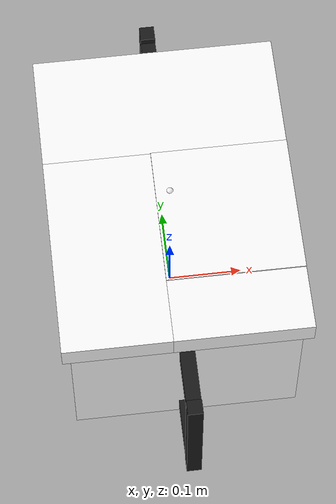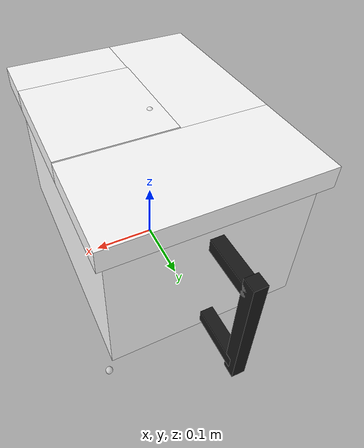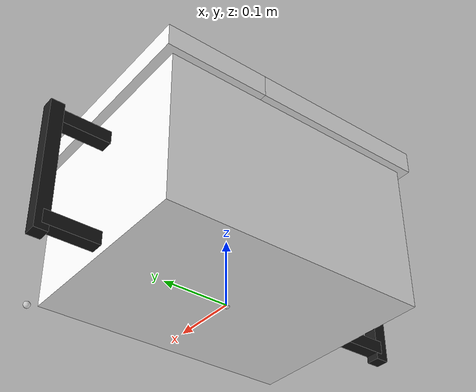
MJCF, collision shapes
<mujoco model="tote_f01">
  <default>
    <default class="visual">
      <geom group="1" type="mesh" contype="0" conaffinity="0" density="100"/>
    </default>
    <default class="collision">
      <geom group="0" type="mesh" density="100" solimp="0.95 0.98 0.001" solref="0.004 1" rgba="1 1 1 0.25"/>
    </default>
  </default>
  <asset>
    <material name="opaque__plastic__gray.001" specular="0.5" shininess="0.36" rgba="0.050389 0.050389 0.050389 1.000000"/>
    <material name="opaque__plastic__white.001" specular="0.5" shininess="0.25" rgba="0.800000 0.800000 0.800000 1.000000"/>
    <mesh file="meshes/tote_f01_0.obj" name="tote_f01_0"/>
    <mesh file="meshes/tote_f01_1.obj" name="tote_f01_1"/>
  </asset>
  <worldbody>
    <body>
      <body name="object">
        <geom mesh="tote_f01_0" material="opaque__plastic__gray.001" class="visual"/>
        <geom mesh="tote_f01_1" material="opaque__plastic__white.001" class="visual"/>
        <geom name="collider_box_cb92007b" type="box" pos="0.070889545 -0.03478815 0.24138967500000003" size="0.017964765000000008 0.08994487500000001 0.09283863" quat="0.5000000000000001 -0.5000000000000001 0.5000000000000001 0.5000000000000001" class="collision"/>
        <geom name="collider_box_d69e040c" type="box" pos="7.4400000000140285e-06 0.13538329999999998 0.240409235" size="0.016987835000000007 0.07733282 0.16083340000000002" quat="0.7071067811865476 0.0 0.7071067811865472 -4.3297802811774695e-17" class="collision"/>
        <geom name="collider_box_a47505b5" type="box" pos="-0.08994709000000001 -0.077390755 0.24041107499999997" size="0.016986354999999995 0.07089175 0.135441235" quat="0.5000000000000001 0.5000000000000001 0.5000000000000001 -0.5000000000000001" class="collision"/>
        <geom name="collider_box_85e0036b" type="box" pos="-7.285614012862304e-06 5.577544530395313e-05 0.11056478500286834" size="0.11286876933290152 0.1501230020814523 0.19892934896578765" quat="0.5000240928866677 0.4999943632778841 0.500023614941359 -0.4999579259539585" class="collision"/>
        <geom name="collider_box_67b0d103" type="box" pos="0.07088399999999997 -0.170233665 0.24041243499999995" size="0.016987715 0.042606885 0.08993932999999998" quat="0.7071067811865476 0.0 0.7071067811865472 0.0" class="collision"/>
        <geom type="box" pos="0 0.28 0.1" size="0.01 0.01 0.1" class="collision" group="1" rgba="0.1 0.1 0.1 1"/>
        <geom type="box" pos="0 -0.28 0.1" size="0.01 0.01 0.1" class="collision" group="1" rgba="0.1 0.1 0.1 1"/>
        <geom type="box" pos="0 0 0.18" size="0.01 0.28 0.01" class="collision" group="1" rgba="0.1 0.1 0.1 1"/>
        <geom type="box" pos="0 0 0.02" size="0.01 0.28 0.01" class="collision" group="1" rgba="0.1 0.1 0.1 1"/>
      </body>
      <site name="bottom_site" pos="0 0 6e-06" rgba="1 1 1 0.5" size="0.005"/>
      <site name="top_site" pos="0 0 0.257046" rgba="1 1 1 0.5" size="0.005"/>
      <site name="horizontal_radius_site" pos="0.158937 0.210934 0" rgba="1 1 1 0.5" size="0.005"/>
    </body>
  </worldbody>
</mujoco>
